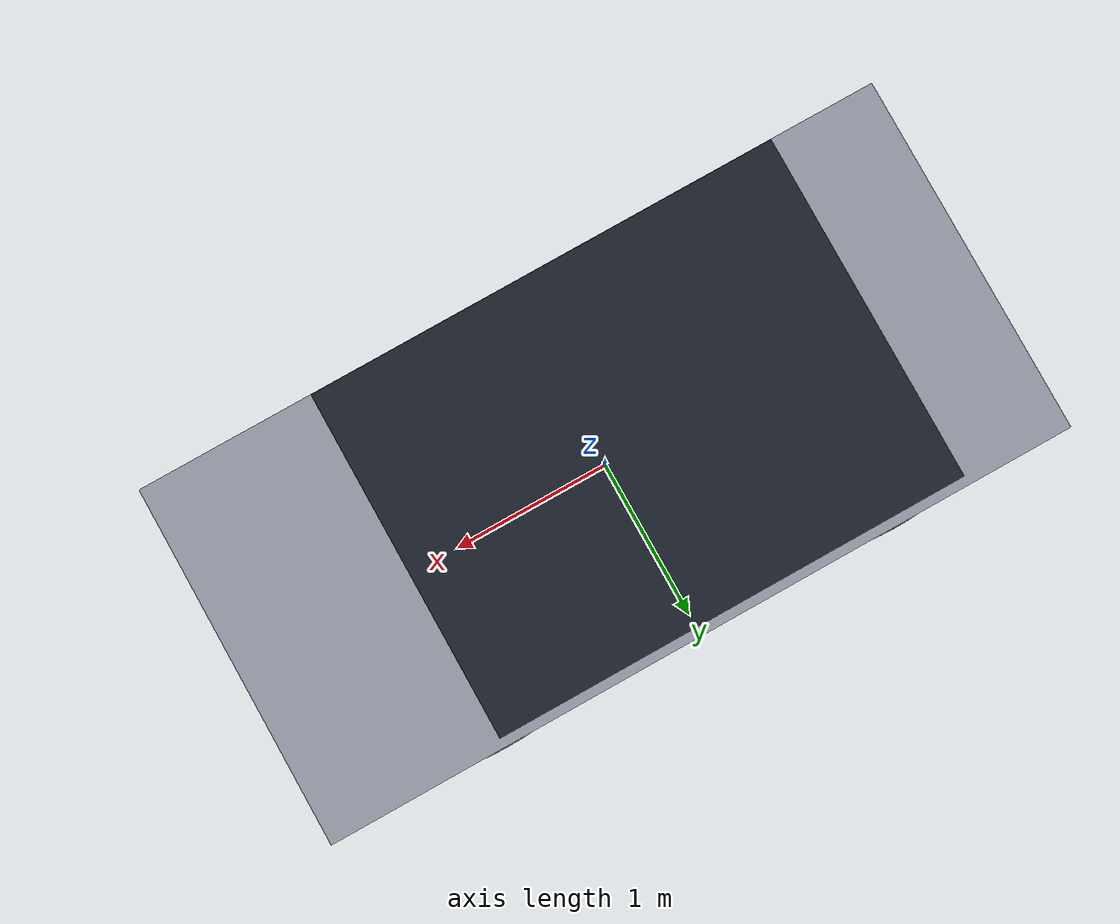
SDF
<?xml version="1.0" ?>
<sdf version="1.10">
<model name="cacc_car"><static>false</static><self_collide>false</self_collide><pose>0 0 0 0 0 0</pose><link name="body"><gravity>false</gravity><inertial><mass>1200</mass><inertia><ixx>500</ixx><iyy>900</iyy><izz>1100</izz><ixy>0</ixy><ixz>0</ixz><iyz>0</iyz></inertia></inertial><visual name="chassis"><pose>0 0 0.7150000000000001 0 0 0</pose><geometry><box><size>4.0 1.9 0.75</size></box></geometry><material><ambient>0.55 0.57 0.62 1</ambient><diffuse>0.55 0.57 0.62 1</diffuse><specular>0.4 0.4 0.4 1</specular><emissive>0.0 0.0 0.0 1</emissive></material></visual><visual name="cabin"><pose>-0.15 0 1.37 0 0 0</pose><geometry><box><size>2.2 1.6199999999999999 0.55</size></box></geometry><material><ambient>0.1 0.12 0.16 1</ambient><diffuse>0.1 0.12 0.16 1</diffuse><specular>0.6 0.6 0.6 1</specular><emissive>0.0 0.0 0.0 1</emissive></material></visual><visual name="wheel_fl"><pose>1.15 0.9199999999999999 0.34 1.5708 0 0</pose><geometry><cylinder><radius>0.34</radius><length>0.22</length></cylinder></geometry><material><ambient>0.05 0.05 0.06 1</ambient><diffuse>0.05 0.05 0.06 1</diffuse><specular>0.2 0.2 0.2 1</specular><emissive>0.0 0.0 0.0 1</emissive></material></visual><visual name="wheel_fr"><pose>1.15 -0.9199999999999999 0.34 1.5708 0 0</pose><geometry><cylinder><radius>0.34</radius><length>0.22</length></cylinder></geometry><material><ambient>0.05 0.05 0.06 1</ambient><diffuse>0.05 0.05 0.06 1</diffuse><specular>0.2 0.2 0.2 1</specular><emissive>0.0 0.0 0.0 1</emissive></material></visual><visual name="wheel_rl"><pose>-1.15 0.9199999999999999 0.34 1.5708 0 0</pose><geometry><cylinder><radius>0.34</radius><length>0.22</length></cylinder></geometry><material><ambient>0.05 0.05 0.06 1</ambient><diffuse>0.05 0.05 0.06 1</diffuse><specular>0.2 0.2 0.2 1</specular><emissive>0.0 0.0 0.0 1</emissive></material></visual><visual name="wheel_rr"><pose>-1.15 -0.9199999999999999 0.34 1.5708 0 0</pose><geometry><cylinder><radius>0.34</radius><length>0.22</length></cylinder></geometry><material><ambient>0.05 0.05 0.06 1</ambient><diffuse>0.05 0.05 0.06 1</diffuse><specular>0.2 0.2 0.2 1</specular><emissive>0.0 0.0 0.0 1</emissive></material></visual><visual name="head_l"><pose>1.95 0.6699999999999999 0.6150000000000001 0 1.5708 0</pose><geometry><cylinder><radius>0.09</radius><length>0.06</length></cylinder></geometry><material><ambient>1.0 0.95 0.7 1</ambient><diffuse>1.0 0.95 0.7 1</diffuse><specular>0.9 0.9 0.9 1</specular><emissive>0.8 0.76 0.5599999999999999 1</emissive></material></visual><visual name="head_r"><pose>1.95 -0.6699999999999999 0.6150000000000001 0 1.5708 0</pose><geometry><cylinder><radius>0.09</radius><length>0.06</length></cylinder></geometry><material><ambient>1.0 0.95 0.7 1</ambient><diffuse>1.0 0.95 0.7 1</diffuse><specular>0.9 0.9 0.9 1</specular><emissive>0.8 0.76 0.5599999999999999 1</emissive></material></visual></link></model>
</sdf>
